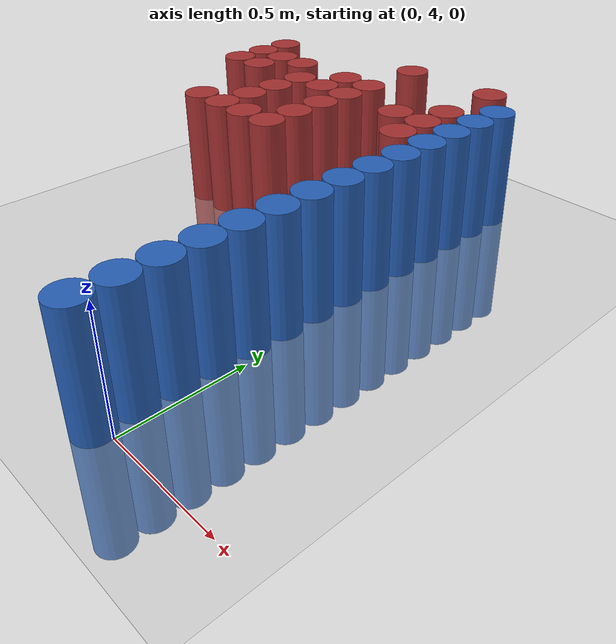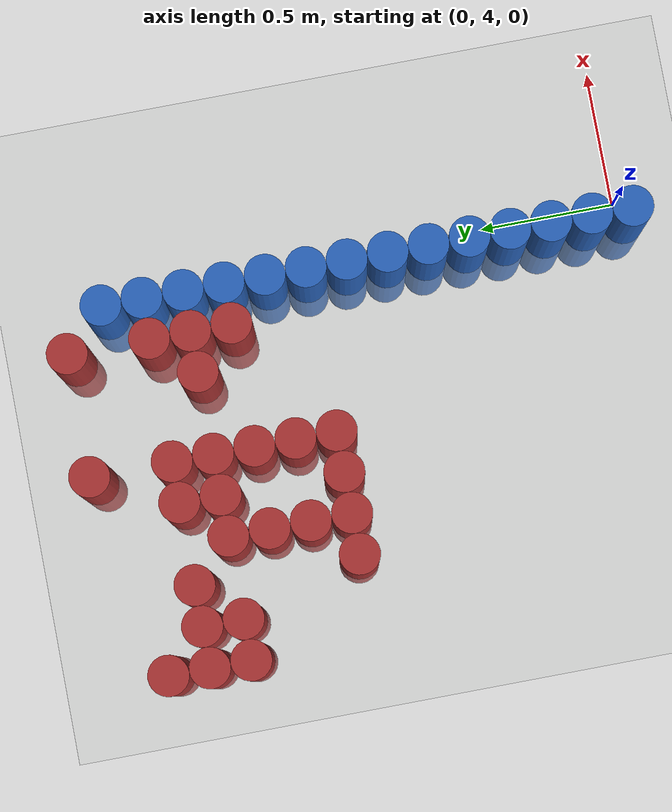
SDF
<sdf version="1.6">
 <world name="default">
  <model name="ground_plane">
   <static>1</static>
   <link name="link">
    <collision name="collision">
     <geometry><plane><normal>0 0 1</normal><size>100 100</size></plane></geometry>
     <surface><friction><ode><mu>100</mu><mu2>50</mu2></ode></friction></surface>
    </collision>
    <visual name="visual">
     <cast_shadows>0</cast_shadows>
     <geometry><plane><normal>0 0 1</normal><size>100 100</size></plane></geometry>
     <material>
      <script><uri>file://media/materials/scripts/gazebo.material</uri><name>Gazebo/Grey</name></script>
     </material>
    </visual>
   </link>
  </model>
  <model name="unit_cylinder_80">
   <static>1</static>
   <pose>-0.075000 3.975000 0.000000 0.000000 0.000000 0.000000</pose>
   <link name="link">
    <inertial>
     <mass>1</mass>
     <inertia><ixx>0.145833</ixx><ixy>0</ixy><ixz>0</ixz><iyy>0.145833</iyy><iyz>0</iyz><izz>0.125</izz></inertia>
    </inertial>
    <collision name="collision">
     <geometry><cylinder><radius>0.075000</radius><length>1</length></cylinder></geometry>
    </collision>
    <visual name="visual">
     <geometry><cylinder><radius>0.075000</radius><length>1</length></cylinder></geometry>
     <material>
      <ambient>0.152000 0.379000 0.720000 1</ambient>
      <diffuse>0.152000 0.379000 0.720000 1</diffuse>
     </material>
     <material>
      <script><name>Gazebo/Grey</name><uri>file://media/materials/scripts/gazebo.material</uri></script>
     </material>
    </visual>
    <sensor name="sensor_contact" type="contact"><contact><collision>collision</collision></contact></sensor>
   </link>
   <plugin filename="gz-sim-touchplugin-system" name="gz::sim::systems::TouchPlugin">
    <target>robot</target>
    <namespace>robot</namespace>
    <time>0.001</time>
    <enabled>true</enabled>
   </plugin>
  </model>
  <model name="unit_cylinder_82">
   <static>1</static>
   <pose>-0.075000 4.125000 0.000000 0.000000 0.000000 0.000000</pose>
   <link name="link">
    <inertial>
     <mass>1</mass>
     <inertia><ixx>0.145833</ixx><ixy>0</ixy><ixz>0</ixz><iyy>0.145833</iyy><iyz>0</iyz><izz>0.125</izz></inertia>
    </inertial>
    <collision name="collision">
     <geometry><cylinder><radius>0.075000</radius><length>1</length></cylinder></geometry>
    </collision>
    <visual name="visual">
     <geometry><cylinder><radius>0.075000</radius><length>1</length></cylinder></geometry>
     <material>
      <ambient>0.152000 0.379000 0.720000 1</ambient>
      <diffuse>0.152000 0.379000 0.720000 1</diffuse>
     </material>
     <material>
      <script><name>Gazebo/Grey</name><uri>file://media/materials/scripts/gazebo.material</uri></script>
     </material>
    </visual>
    <sensor name="sensor_contact" type="contact"><contact><collision>collision</collision></contact></sensor>
   </link>
   <plugin filename="gz-sim-touchplugin-system" name="gz::sim::systems::TouchPlugin">
    <target>robot</target>
    <namespace>robot</namespace>
    <time>0.001</time>
    <enabled>true</enabled>
   </plugin>
  </model>
  <model name="unit_cylinder_84">
   <static>1</static>
   <pose>-0.075000 4.275000 0.000000 0.000000 0.000000 0.000000</pose>
   <link name="link">
    <inertial>
     <mass>1</mass>
     <inertia><ixx>0.145833</ixx><ixy>0</ixy><ixz>0</ixz><iyy>0.145833</iyy><iyz>0</iyz><izz>0.125</izz></inertia>
    </inertial>
    <collision name="collision">
     <geometry><cylinder><radius>0.075000</radius><length>1</length></cylinder></geometry>
    </collision>
    <visual name="visual">
     <geometry><cylinder><radius>0.075000</radius><length>1</length></cylinder></geometry>
     <material>
      <ambient>0.152000 0.379000 0.720000 1</ambient>
      <diffuse>0.152000 0.379000 0.720000 1</diffuse>
     </material>
     <material>
      <script><name>Gazebo/Grey</name><uri>file://media/materials/scripts/gazebo.material</uri></script>
     </material>
    </visual>
    <sensor name="sensor_contact" type="contact"><contact><collision>collision</collision></contact></sensor>
   </link>
   <plugin filename="gz-sim-touchplugin-system" name="gz::sim::systems::TouchPlugin">
    <target>robot</target>
    <namespace>robot</namespace>
    <time>0.001</time>
    <enabled>true</enabled>
   </plugin>
  </model>
  <model name="unit_cylinder_86">
   <static>1</static>
   <pose>-0.075000 4.425000 0.000000 0.000000 0.000000 0.000000</pose>
   <link name="link">
    <inertial>
     <mass>1</mass>
     <inertia><ixx>0.145833</ixx><ixy>0</ixy><ixz>0</ixz><iyy>0.145833</iyy><iyz>0</iyz><izz>0.125</izz></inertia>
    </inertial>
    <collision name="collision">
     <geometry><cylinder><radius>0.075000</radius><length>1</length></cylinder></geometry>
    </collision>
    <visual name="visual">
     <geometry><cylinder><radius>0.075000</radius><length>1</length></cylinder></geometry>
     <material>
      <ambient>0.152000 0.379000 0.720000 1</ambient>
      <diffuse>0.152000 0.379000 0.720000 1</diffuse>
     </material>
     <material>
      <script><name>Gazebo/Grey</name><uri>file://media/materials/scripts/gazebo.material</uri></script>
     </material>
    </visual>
    <sensor name="sensor_contact" type="contact"><contact><collision>collision</collision></contact></sensor>
   </link>
   <plugin filename="gz-sim-touchplugin-system" name="gz::sim::systems::TouchPlugin">
    <target>robot</target>
    <namespace>robot</namespace>
    <time>0.001</time>
    <enabled>true</enabled>
   </plugin>
  </model>
  <model name="unit_cylinder_88">
   <static>1</static>
   <pose>-0.075000 4.575000 0.000000 0.000000 0.000000 0.000000</pose>
   <link name="link">
    <inertial>
     <mass>1</mass>
     <inertia><ixx>0.145833</ixx><ixy>0</ixy><ixz>0</ixz><iyy>0.145833</iyy><iyz>0</iyz><izz>0.125</izz></inertia>
    </inertial>
    <collision name="collision">
     <geometry><cylinder><radius>0.075000</radius><length>1</length></cylinder></geometry>
    </collision>
    <visual name="visual">
     <geometry><cylinder><radius>0.075000</radius><length>1</length></cylinder></geometry>
     <material>
      <ambient>0.152000 0.379000 0.720000 1</ambient>
      <diffuse>0.152000 0.379000 0.720000 1</diffuse>
     </material>
     <material>
      <script><name>Gazebo/Grey</name><uri>file://media/materials/scripts/gazebo.material</uri></script>
     </material>
    </visual>
    <sensor name="sensor_contact" type="contact"><contact><collision>collision</collision></contact></sensor>
   </link>
   <plugin filename="gz-sim-touchplugin-system" name="gz::sim::systems::TouchPlugin">
    <target>robot</target>
    <namespace>robot</namespace>
    <time>0.001</time>
    <enabled>true</enabled>
   </plugin>
  </model>
  <model name="unit_cylinder_90">
   <static>1</static>
   <pose>-0.075000 4.725000 0.000000 0.000000 0.000000 0.000000</pose>
   <link name="link">
    <inertial>
     <mass>1</mass>
     <inertia><ixx>0.145833</ixx><ixy>0</ixy><ixz>0</ixz><iyy>0.145833</iyy><iyz>0</iyz><izz>0.125</izz></inertia>
    </inertial>
    <collision name="collision">
     <geometry><cylinder><radius>0.075000</radius><length>1</length></cylinder></geometry>
    </collision>
    <visual name="visual">
     <geometry><cylinder><radius>0.075000</radius><length>1</length></cylinder></geometry>
     <material>
      <ambient>0.152000 0.379000 0.720000 1</ambient>
      <diffuse>0.152000 0.379000 0.720000 1</diffuse>
     </material>
     <material>
      <script><name>Gazebo/Grey</name><uri>file://media/materials/scripts/gazebo.material</uri></script>
     </material>
    </visual>
    <sensor name="sensor_contact" type="contact"><contact><collision>collision</collision></contact></sensor>
   </link>
   <plugin filename="gz-sim-touchplugin-system" name="gz::sim::systems::TouchPlugin">
    <target>robot</target>
    <namespace>robot</namespace>
    <time>0.001</time>
    <enabled>true</enabled>
   </plugin>
  </model>
  <model name="unit_cylinder_92">
   <static>1</static>
   <pose>-0.075000 4.875000 0.000000 0.000000 0.000000 0.000000</pose>
   <link name="link">
    <inertial>
     <mass>1</mass>
     <inertia><ixx>0.145833</ixx><ixy>0</ixy><ixz>0</ixz><iyy>0.145833</iyy><iyz>0</iyz><izz>0.125</izz></inertia>
    </inertial>
    <collision name="collision">
     <geometry><cylinder><radius>0.075000</radius><length>1</length></cylinder></geometry>
    </collision>
    <visual name="visual">
     <geometry><cylinder><radius>0.075000</radius><length>1</length></cylinder></geometry>
     <material>
      <ambient>0.152000 0.379000 0.720000 1</ambient>
      <diffuse>0.152000 0.379000 0.720000 1</diffuse>
     </material>
     <material>
      <script><name>Gazebo/Grey</name><uri>file://media/materials/scripts/gazebo.material</uri></script>
     </material>
    </visual>
    <sensor name="sensor_contact" type="contact"><contact><collision>collision</collision></contact></sensor>
   </link>
   <plugin filename="gz-sim-touchplugin-system" name="gz::sim::systems::TouchPlugin">
    <target>robot</target>
    <namespace>robot</namespace>
    <time>0.001</time>
    <enabled>true</enabled>
   </plugin>
  </model>
  <model name="unit_cylinder_94">
   <static>1</static>
   <pose>-0.075000 5.025000 0.000000 0.000000 0.000000 0.000000</pose>
   <link name="link">
    <inertial>
     <mass>1</mass>
     <inertia><ixx>0.145833</ixx><ixy>0</ixy><ixz>0</ixz><iyy>0.145833</iyy><iyz>0</iyz><izz>0.125</izz></inertia>
    </inertial>
    <collision name="collision">
     <geometry><cylinder><radius>0.075000</radius><length>1</length></cylinder></geometry>
    </collision>
    <visual name="visual">
     <geometry><cylinder><radius>0.075000</radius><length>1</length></cylinder></geometry>
     <material>
      <ambient>0.152000 0.379000 0.720000 1</ambient>
      <diffuse>0.152000 0.379000 0.720000 1</diffuse>
     </material>
     <material>
      <script><name>Gazebo/Grey</name><uri>file://media/materials/scripts/gazebo.material</uri></script>
     </material>
    </visual>
    <sensor name="sensor_contact" type="contact"><contact><collision>collision</collision></contact></sensor>
   </link>
   <plugin filename="gz-sim-touchplugin-system" name="gz::sim::systems::TouchPlugin">
    <target>robot</target>
    <namespace>robot</namespace>
    <time>0.001</time>
    <enabled>true</enabled>
   </plugin>
  </model>
  <model name="unit_cylinder_211">
   <static>1</static>
   <pose>-1.425000 5.625000 0.000000 0.000000 0.000000 0.000000</pose>
   <link name="link">
    <inertial>
     <mass>1</mass>
     <inertia><ixx>0.145833</ixx><ixy>0</ixy><ixz>0</ixz><iyy>0.145833</iyy><iyz>0</iyz><izz>0.125</izz></inertia>
    </inertial>
    <collision name="collision">
     <geometry><cylinder><radius>0.075000</radius><length>1</length></cylinder></geometry>
    </collision>
    <visual name="visual">
     <geometry><cylinder><radius>0.075000</radius><length>1</length></cylinder></geometry>
     <material>
      <ambient>0.648000 0.192000 0.192000 1</ambient>
      <diffuse>0.648000 0.192000 0.192000 1</diffuse>
     </material>
     <material>
      <script><name>Gazebo/Grey</name><uri>file://media/materials/scripts/gazebo.material</uri></script>
     </material>
    </visual>
    <sensor name="sensor_contact" type="contact"><contact><collision>collision</collision></contact></sensor>
   </link>
   <plugin filename="gz-sim-touchplugin-system" name="gz::sim::systems::TouchPlugin">
    <target>robot</target>
    <namespace>robot</namespace>
    <time>0.001</time>
    <enabled>true</enabled>
   </plugin>
  </model>
  <model name="unit_cylinder_212">
   <static>1</static>
   <pose>-1.425000 5.775000 0.000000 0.000000 0.000000 0.000000</pose>
   <link name="link">
    <inertial>
     <mass>1</mass>
     <inertia><ixx>0.145833</ixx><ixy>0</ixy><ixz>0</ixz><iyy>0.145833</iyy><iyz>0</iyz><izz>0.125</izz></inertia>
    </inertial>
    <collision name="collision">
     <geometry><cylinder><radius>0.075000</radius><length>1</length></cylinder></geometry>
    </collision>
    <visual name="visual">
     <geometry><cylinder><radius>0.075000</radius><length>1</length></cylinder></geometry>
     <material>
      <ambient>0.648000 0.192000 0.192000 1</ambient>
      <diffuse>0.648000 0.192000 0.192000 1</diffuse>
     </material>
     <material>
      <script><name>Gazebo/Grey</name><uri>file://media/materials/scripts/gazebo.material</uri></script>
     </material>
    </visual>
    <sensor name="sensor_contact" type="contact"><contact><collision>collision</collision></contact></sensor>
   </link>
   <plugin filename="gz-sim-touchplugin-system" name="gz::sim::systems::TouchPlugin">
    <target>robot</target>
    <namespace>robot</namespace>
    <time>0.001</time>
    <enabled>true</enabled>
   </plugin>
  </model>
  <model name="unit_cylinder_213">
   <static>1</static>
   <pose>-1.425000 5.925000 0.000000 0.000000 0.000000 0.000000</pose>
   <link name="link">
    <inertial>
     <mass>1</mass>
     <inertia><ixx>0.145833</ixx><ixy>0</ixy><ixz>0</ixz><iyy>0.145833</iyy><iyz>0</iyz><izz>0.125</izz></inertia>
    </inertial>
    <collision name="collision">
     <geometry><cylinder><radius>0.075000</radius><length>1</length></cylinder></geometry>
    </collision>
    <visual name="visual">
     <geometry><cylinder><radius>0.075000</radius><length>1</length></cylinder></geometry>
     <material>
      <ambient>0.648000 0.192000 0.192000 1</ambient>
      <diffuse>0.648000 0.192000 0.192000 1</diffuse>
     </material>
     <material>
      <script><name>Gazebo/Grey</name><uri>file://media/materials/scripts/gazebo.material</uri></script>
     </material>
    </visual>
    <sensor name="sensor_contact" type="contact"><contact><collision>collision</collision></contact></sensor>
   </link>
   <plugin filename="gz-sim-touchplugin-system" name="gz::sim::systems::TouchPlugin">
    <target>robot</target>
    <namespace>robot</namespace>
    <time>0.001</time>
    <enabled>true</enabled>
   </plugin>
  </model>
  <model name="unit_cylinder_216">
   <static>1</static>
   <pose>-1.275000 5.625000 0.000000 0.000000 0.000000 0.000000</pose>
   <link name="link">
    <inertial>
     <mass>1</mass>
     <inertia><ixx>0.145833</ixx><ixy>0</ixy><ixz>0</ixz><iyy>0.145833</iyy><iyz>0</iyz><izz>0.125</izz></inertia>
    </inertial>
    <collision name="collision">
     <geometry><cylinder><radius>0.075000</radius><length>1</length></cylinder></geometry>
    </collision>
    <visual name="visual">
     <geometry><cylinder><radius>0.075000</radius><length>1</length></cylinder></geometry>
     <material>
      <ambient>0.648000 0.192000 0.192000 1</ambient>
      <diffuse>0.648000 0.192000 0.192000 1</diffuse>
     </material>
     <material>
      <script><name>Gazebo/Grey</name><uri>file://media/materials/scripts/gazebo.material</uri></script>
     </material>
    </visual>
    <sensor name="sensor_contact" type="contact"><contact><collision>collision</collision></contact></sensor>
   </link>
   <plugin filename="gz-sim-touchplugin-system" name="gz::sim::systems::TouchPlugin">
    <target>robot</target>
    <namespace>robot</namespace>
    <time>0.001</time>
    <enabled>true</enabled>
   </plugin>
  </model>
  <model name="unit_cylinder_217">
   <static>1</static>
   <pose>-1.275000 5.775000 0.000000 0.000000 0.000000 0.000000</pose>
   <link name="link">
    <inertial>
     <mass>1</mass>
     <inertia><ixx>0.145833</ixx><ixy>0</ixy><ixz>0</ixz><iyy>0.145833</iyy><iyz>0</iyz><izz>0.125</izz></inertia>
    </inertial>
    <collision name="collision">
     <geometry><cylinder><radius>0.075000</radius><length>1</length></cylinder></geometry>
    </collision>
    <visual name="visual">
     <geometry><cylinder><radius>0.075000</radius><length>1</length></cylinder></geometry>
     <material>
      <ambient>0.648000 0.192000 0.192000 1</ambient>
      <diffuse>0.648000 0.192000 0.192000 1</diffuse>
     </material>
     <material>
      <script><name>Gazebo/Grey</name><uri>file://media/materials/scripts/gazebo.material</uri></script>
     </material>
    </visual>
    <sensor name="sensor_contact" type="contact"><contact><collision>collision</collision></contact></sensor>
   </link>
   <plugin filename="gz-sim-touchplugin-system" name="gz::sim::systems::TouchPlugin">
    <target>robot</target>
    <namespace>robot</namespace>
    <time>0.001</time>
    <enabled>true</enabled>
   </plugin>
  </model>
  <model name="unit_cylinder_218">
   <static>1</static>
   <pose>-1.125000 5.175000 0.000000 0.000000 0.000000 0.000000</pose>
   <link name="link">
    <inertial>
     <mass>1</mass>
     <inertia><ixx>0.145833</ixx><ixy>0</ixy><ixz>0</ixz><iyy>0.145833</iyy><iyz>0</iyz><izz>0.125</izz></inertia>
    </inertial>
    <collision name="collision">
     <geometry><cylinder><radius>0.075000</radius><length>1</length></cylinder></geometry>
    </collision>
    <visual name="visual">
     <geometry><cylinder><radius>0.075000</radius><length>1</length></cylinder></geometry>
     <material>
      <ambient>0.648000 0.192000 0.192000 1</ambient>
      <diffuse>0.648000 0.192000 0.192000 1</diffuse>
     </material>
     <material>
      <script><name>Gazebo/Grey</name><uri>file://media/materials/scripts/gazebo.material</uri></script>
     </material>
    </visual>
    <sensor name="sensor_contact" type="contact"><contact><collision>collision</collision></contact></sensor>
   </link>
   <plugin filename="gz-sim-touchplugin-system" name="gz::sim::systems::TouchPlugin">
    <target>robot</target>
    <namespace>robot</namespace>
    <time>0.001</time>
    <enabled>true</enabled>
   </plugin>
  </model>
  <model name="unit_cylinder_219">
   <static>1</static>
   <pose>-1.125000 5.775000 0.000000 0.000000 0.000000 0.000000</pose>
   <link name="link">
    <inertial>
     <mass>1</mass>
     <inertia><ixx>0.145833</ixx><ixy>0</ixy><ixz>0</ixz><iyy>0.145833</iyy><iyz>0</iyz><izz>0.125</izz></inertia>
    </inertial>
    <collision name="collision">
     <geometry><cylinder><radius>0.075000</radius><length>1</length></cylinder></geometry>
    </collision>
    <visual name="visual">
     <geometry><cylinder><radius>0.075000</radius><length>1</length></cylinder></geometry>
     <material>
      <ambient>0.648000 0.192000 0.192000 1</ambient>
      <diffuse>0.648000 0.192000 0.192000 1</diffuse>
     </material>
     <material>
      <script><name>Gazebo/Grey</name><uri>file://media/materials/scripts/gazebo.material</uri></script>
     </material>
    </visual>
    <sensor name="sensor_contact" type="contact"><contact><collision>collision</collision></contact></sensor>
   </link>
   <plugin filename="gz-sim-touchplugin-system" name="gz::sim::systems::TouchPlugin">
    <target>robot</target>
    <namespace>robot</namespace>
    <time>0.001</time>
    <enabled>true</enabled>
   </plugin>
  </model>
  <model name="unit_cylinder_225">
   <static>1</static>
   <pose>-0.975000 5.175000 0.000000 0.000000 0.000000 0.000000</pose>
   <link name="link">
    <inertial>
     <mass>1</mass>
     <inertia><ixx>0.145833</ixx><ixy>0</ixy><ixz>0</ixz><iyy>0.145833</iyy><iyz>0</iyz><izz>0.125</izz></inertia>
    </inertial>
    <collision name="collision">
     <geometry><cylinder><radius>0.075000</radius><length>1</length></cylinder></geometry>
    </collision>
    <visual name="visual">
     <geometry><cylinder><radius>0.075000</radius><length>1</length></cylinder></geometry>
     <material>
      <ambient>0.648000 0.192000 0.192000 1</ambient>
      <diffuse>0.648000 0.192000 0.192000 1</diffuse>
     </material>
     <material>
      <script><name>Gazebo/Grey</name><uri>file://media/materials/scripts/gazebo.material</uri></script>
     </material>
    </visual>
    <sensor name="sensor_contact" type="contact"><contact><collision>collision</collision></contact></sensor>
   </link>
   <plugin filename="gz-sim-touchplugin-system" name="gz::sim::systems::TouchPlugin">
    <target>robot</target>
    <namespace>robot</namespace>
    <time>0.001</time>
    <enabled>true</enabled>
   </plugin>
  </model>
  <model name="unit_cylinder_226">
   <static>1</static>
   <pose>-0.975000 5.325000 0.000000 0.000000 0.000000 0.000000</pose>
   <link name="link">
    <inertial>
     <mass>1</mass>
     <inertia><ixx>0.145833</ixx><ixy>0</ixy><ixz>0</ixz><iyy>0.145833</iyy><iyz>0</iyz><izz>0.125</izz></inertia>
    </inertial>
    <collision name="collision">
     <geometry><cylinder><radius>0.075000</radius><length>1</length></cylinder></geometry>
    </collision>
    <visual name="visual">
     <geometry><cylinder><radius>0.075000</radius><length>1</length></cylinder></geometry>
     <material>
      <ambient>0.648000 0.192000 0.192000 1</ambient>
      <diffuse>0.648000 0.192000 0.192000 1</diffuse>
     </material>
     <material>
      <script><name>Gazebo/Grey</name><uri>file://media/materials/scripts/gazebo.material</uri></script>
     </material>
    </visual>
    <sensor name="sensor_contact" type="contact"><contact><collision>collision</collision></contact></sensor>
   </link>
   <plugin filename="gz-sim-touchplugin-system" name="gz::sim::systems::TouchPlugin">
    <target>robot</target>
    <namespace>robot</namespace>
    <time>0.001</time>
    <enabled>true</enabled>
   </plugin>
  </model>
  <model name="unit_cylinder_227">
   <static>1</static>
   <pose>-0.975000 5.475000 0.000000 0.000000 0.000000 0.000000</pose>
   <link name="link">
    <inertial>
     <mass>1</mass>
     <inertia><ixx>0.145833</ixx><ixy>0</ixy><ixz>0</ixz><iyy>0.145833</iyy><iyz>0</iyz><izz>0.125</izz></inertia>
    </inertial>
    <collision name="collision">
     <geometry><cylinder><radius>0.075000</radius><length>1</length></cylinder></geometry>
    </collision>
    <visual name="visual">
     <geometry><cylinder><radius>0.075000</radius><length>1</length></cylinder></geometry>
     <material>
      <ambient>0.648000 0.192000 0.192000 1</ambient>
      <diffuse>0.648000 0.192000 0.192000 1</diffuse>
     </material>
     <material>
      <script><name>Gazebo/Grey</name><uri>file://media/materials/scripts/gazebo.material</uri></script>
     </material>
    </visual>
    <sensor name="sensor_contact" type="contact"><contact><collision>collision</collision></contact></sensor>
   </link>
   <plugin filename="gz-sim-touchplugin-system" name="gz::sim::systems::TouchPlugin">
    <target>robot</target>
    <namespace>robot</namespace>
    <time>0.001</time>
    <enabled>true</enabled>
   </plugin>
  </model>
  <model name="unit_cylinder_228">
   <static>1</static>
   <pose>-0.975000 5.625000 0.000000 0.000000 0.000000 0.000000</pose>
   <link name="link">
    <inertial>
     <mass>1</mass>
     <inertia><ixx>0.145833</ixx><ixy>0</ixy><ixz>0</ixz><iyy>0.145833</iyy><iyz>0</iyz><izz>0.125</izz></inertia>
    </inertial>
    <collision name="collision">
     <geometry><cylinder><radius>0.075000</radius><length>1</length></cylinder></geometry>
    </collision>
    <visual name="visual">
     <geometry><cylinder><radius>0.075000</radius><length>1</length></cylinder></geometry>
     <material>
      <ambient>0.648000 0.192000 0.192000 1</ambient>
      <diffuse>0.648000 0.192000 0.192000 1</diffuse>
     </material>
     <material>
      <script><name>Gazebo/Grey</name><uri>file://media/materials/scripts/gazebo.material</uri></script>
     </material>
    </visual>
    <sensor name="sensor_contact" type="contact"><contact><collision>collision</collision></contact></sensor>
   </link>
   <plugin filename="gz-sim-touchplugin-system" name="gz::sim::systems::TouchPlugin">
    <target>robot</target>
    <namespace>robot</namespace>
    <time>0.001</time>
    <enabled>true</enabled>
   </plugin>
  </model>
  <model name="unit_cylinder_234">
   <static>1</static>
   <pose>-0.825000 5.175000 0.000000 0.000000 0.000000 0.000000</pose>
   <link name="link">
    <inertial>
     <mass>1</mass>
     <inertia><ixx>0.145833</ixx><ixy>0</ixy><ixz>0</ixz><iyy>0.145833</iyy><iyz>0</iyz><izz>0.125</izz></inertia>
    </inertial>
    <collision name="collision">
     <geometry><cylinder><radius>0.075000</radius><length>1</length></cylinder></geometry>
    </collision>
    <visual name="visual">
     <geometry><cylinder><radius>0.075000</radius><length>1</length></cylinder></geometry>
     <material>
      <ambient>0.648000 0.192000 0.192000 1</ambient>
      <diffuse>0.648000 0.192000 0.192000 1</diffuse>
     </material>
     <material>
      <script><name>Gazebo/Grey</name><uri>file://media/materials/scripts/gazebo.material</uri></script>
     </material>
    </visual>
    <sensor name="sensor_contact" type="contact"><contact><collision>collision</collision></contact></sensor>
   </link>
   <plugin filename="gz-sim-touchplugin-system" name="gz::sim::systems::TouchPlugin">
    <target>robot</target>
    <namespace>robot</namespace>
    <time>0.001</time>
    <enabled>true</enabled>
   </plugin>
  </model>
  <model name="unit_cylinder_235">
   <static>1</static>
   <pose>-0.825000 5.625000 0.000000 0.000000 0.000000 0.000000</pose>
   <link name="link">
    <inertial>
     <mass>1</mass>
     <inertia><ixx>0.145833</ixx><ixy>0</ixy><ixz>0</ixz><iyy>0.145833</iyy><iyz>0</iyz><izz>0.125</izz></inertia>
    </inertial>
    <collision name="collision">
     <geometry><cylinder><radius>0.075000</radius><length>1</length></cylinder></geometry>
    </collision>
    <visual name="visual">
     <geometry><cylinder><radius>0.075000</radius><length>1</length></cylinder></geometry>
     <material>
      <ambient>0.648000 0.192000 0.192000 1</ambient>
      <diffuse>0.648000 0.192000 0.192000 1</diffuse>
     </material>
     <material>
      <script><name>Gazebo/Grey</name><uri>file://media/materials/scripts/gazebo.material</uri></script>
     </material>
    </visual>
    <sensor name="sensor_contact" type="contact"><contact><collision>collision</collision></contact></sensor>
   </link>
   <plugin filename="gz-sim-touchplugin-system" name="gz::sim::systems::TouchPlugin">
    <target>robot</target>
    <namespace>robot</namespace>
    <time>0.001</time>
    <enabled>true</enabled>
   </plugin>
  </model>
  <model name="unit_cylinder_236">
   <static>1</static>
   <pose>-0.825000 5.775000 0.000000 0.000000 0.000000 0.000000</pose>
   <link name="link">
    <inertial>
     <mass>1</mass>
     <inertia><ixx>0.145833</ixx><ixy>0</ixy><ixz>0</ixz><iyy>0.145833</iyy><iyz>0</iyz><izz>0.125</izz></inertia>
    </inertial>
    <collision name="collision">
     <geometry><cylinder><radius>0.075000</radius><length>1</length></cylinder></geometry>
    </collision>
    <visual name="visual">
     <geometry><cylinder><radius>0.075000</radius><length>1</length></cylinder></geometry>
     <material>
      <ambient>0.648000 0.192000 0.192000 1</ambient>
      <diffuse>0.648000 0.192000 0.192000 1</diffuse>
     </material>
     <material>
      <script><name>Gazebo/Grey</name><uri>file://media/materials/scripts/gazebo.material</uri></script>
     </material>
    </visual>
    <sensor name="sensor_contact" type="contact"><contact><collision>collision</collision></contact></sensor>
   </link>
   <plugin filename="gz-sim-touchplugin-system" name="gz::sim::systems::TouchPlugin">
    <target>robot</target>
    <namespace>robot</namespace>
    <time>0.001</time>
    <enabled>true</enabled>
   </plugin>
  </model>
  <model name="unit_cylinder_241">
   <static>1</static>
   <pose>-0.675000 5.175000 0.000000 0.000000 0.000000 0.000000</pose>
   <link name="link">
    <inertial>
     <mass>1</mass>
     <inertia><ixx>0.145833</ixx><ixy>0</ixy><ixz>0</ixz><iyy>0.145833</iyy><iyz>0</iyz><izz>0.125</izz></inertia>
    </inertial>
    <collision name="collision">
     <geometry><cylinder><radius>0.075000</radius><length>1</length></cylinder></geometry>
    </collision>
    <visual name="visual">
     <geometry><cylinder><radius>0.075000</radius><length>1</length></cylinder></geometry>
     <material>
      <ambient>0.648000 0.192000 0.192000 1</ambient>
      <diffuse>0.648000 0.192000 0.192000 1</diffuse>
     </material>
     <material>
      <script><name>Gazebo/Grey</name><uri>file://media/materials/scripts/gazebo.material</uri></script>
     </material>
    </visual>
    <sensor name="sensor_contact" type="contact"><contact><collision>collision</collision></contact></sensor>
   </link>
   <plugin filename="gz-sim-touchplugin-system" name="gz::sim::systems::TouchPlugin">
    <target>robot</target>
    <namespace>robot</namespace>
    <time>0.001</time>
    <enabled>true</enabled>
   </plugin>
  </model>
  <model name="unit_cylinder_242">
   <static>1</static>
   <pose>-0.675000 5.325000 0.000000 0.000000 0.000000 0.000000</pose>
   <link name="link">
    <inertial>
     <mass>1</mass>
     <inertia><ixx>0.145833</ixx><ixy>0</ixy><ixz>0</ixz><iyy>0.145833</iyy><iyz>0</iyz><izz>0.125</izz></inertia>
    </inertial>
    <collision name="collision">
     <geometry><cylinder><radius>0.075000</radius><length>1</length></cylinder></geometry>
    </collision>
    <visual name="visual">
     <geometry><cylinder><radius>0.075000</radius><length>1</length></cylinder></geometry>
     <material>
      <ambient>0.648000 0.192000 0.192000 1</ambient>
      <diffuse>0.648000 0.192000 0.192000 1</diffuse>
     </material>
     <material>
      <script><name>Gazebo/Grey</name><uri>file://media/materials/scripts/gazebo.material</uri></script>
     </material>
    </visual>
    <sensor name="sensor_contact" type="contact"><contact><collision>collision</collision></contact></sensor>
   </link>
   <plugin filename="gz-sim-touchplugin-system" name="gz::sim::systems::TouchPlugin">
    <target>robot</target>
    <namespace>robot</namespace>
    <time>0.001</time>
    <enabled>true</enabled>
   </plugin>
  </model>
  <model name="unit_cylinder_243">
   <static>1</static>
   <pose>-0.675000 5.475000 0.000000 0.000000 0.000000 0.000000</pose>
   <link name="link">
    <inertial>
     <mass>1</mass>
     <inertia><ixx>0.145833</ixx><ixy>0</ixy><ixz>0</ixz><iyy>0.145833</iyy><iyz>0</iyz><izz>0.125</izz></inertia>
    </inertial>
    <collision name="collision">
     <geometry><cylinder><radius>0.075000</radius><length>1</length></cylinder></geometry>
    </collision>
    <visual name="visual">
     <geometry><cylinder><radius>0.075000</radius><length>1</length></cylinder></geometry>
     <material>
      <ambient>0.648000 0.192000 0.192000 1</ambient>
      <diffuse>0.648000 0.192000 0.192000 1</diffuse>
     </material>
     <material>
      <script><name>Gazebo/Grey</name><uri>file://media/materials/scripts/gazebo.material</uri></script>
     </material>
    </visual>
    <sensor name="sensor_contact" type="contact"><contact><collision>collision</collision></contact></sensor>
   </link>
   <plugin filename="gz-sim-touchplugin-system" name="gz::sim::systems::TouchPlugin">
    <target>robot</target>
    <namespace>robot</namespace>
    <time>0.001</time>
    <enabled>true</enabled>
   </plugin>
  </model>
  <model name="unit_cylinder_244">
   <static>1</static>
   <pose>-0.675000 5.625000 0.000000 0.000000 0.000000 0.000000</pose>
   <link name="link">
    <inertial>
     <mass>1</mass>
     <inertia><ixx>0.145833</ixx><ixy>0</ixy><ixz>0</ixz><iyy>0.145833</iyy><iyz>0</iyz><izz>0.125</izz></inertia>
    </inertial>
    <collision name="collision">
     <geometry><cylinder><radius>0.075000</radius><length>1</length></cylinder></geometry>
    </collision>
    <visual name="visual">
     <geometry><cylinder><radius>0.075000</radius><length>1</length></cylinder></geometry>
     <material>
      <ambient>0.648000 0.192000 0.192000 1</ambient>
      <diffuse>0.648000 0.192000 0.192000 1</diffuse>
     </material>
     <material>
      <script><name>Gazebo/Grey</name><uri>file://media/materials/scripts/gazebo.material</uri></script>
     </material>
    </visual>
    <sensor name="sensor_contact" type="contact"><contact><collision>collision</collision></contact></sensor>
   </link>
   <plugin filename="gz-sim-touchplugin-system" name="gz::sim::systems::TouchPlugin">
    <target>robot</target>
    <namespace>robot</namespace>
    <time>0.001</time>
    <enabled>true</enabled>
   </plugin>
  </model>
  <model name="unit_cylinder_245">
   <static>1</static>
   <pose>-0.675000 5.775000 0.000000 0.000000 0.000000 0.000000</pose>
   <link name="link">
    <inertial>
     <mass>1</mass>
     <inertia><ixx>0.145833</ixx><ixy>0</ixy><ixz>0</ixz><iyy>0.145833</iyy><iyz>0</iyz><izz>0.125</izz></inertia>
    </inertial>
    <collision name="collision">
     <geometry><cylinder><radius>0.075000</radius><length>1</length></cylinder></geometry>
    </collision>
    <visual name="visual">
     <geometry><cylinder><radius>0.075000</radius><length>1</length></cylinder></geometry>
     <material>
      <ambient>0.648000 0.192000 0.192000 1</ambient>
      <diffuse>0.648000 0.192000 0.192000 1</diffuse>
     </material>
     <material>
      <script><name>Gazebo/Grey</name><uri>file://media/materials/scripts/gazebo.material</uri></script>
     </material>
    </visual>
    <sensor name="sensor_contact" type="contact"><contact><collision>collision</collision></contact></sensor>
   </link>
   <plugin filename="gz-sim-touchplugin-system" name="gz::sim::systems::TouchPlugin">
    <target>robot</target>
    <namespace>robot</namespace>
    <time>0.001</time>
    <enabled>true</enabled>
   </plugin>
  </model>
  <model name="unit_cylinder_246">
   <static>1</static>
   <pose>-0.675000 6.075000 0.000000 0.000000 0.000000 0.000000</pose>
   <link name="link">
    <inertial>
     <mass>1</mass>
     <inertia><ixx>0.145833</ixx><ixy>0</ixy><ixz>0</ixz><iyy>0.145833</iyy><iyz>0</iyz><izz>0.125</izz></inertia>
    </inertial>
    <collision name="collision">
     <geometry><cylinder><radius>0.075000</radius><length>1</length></cylinder></geometry>
    </collision>
    <visual name="visual">
     <geometry><cylinder><radius>0.075000</radius><length>1</length></cylinder></geometry>
     <material>
      <ambient>0.648000 0.192000 0.192000 1</ambient>
      <diffuse>0.648000 0.192000 0.192000 1</diffuse>
     </material>
     <material>
      <script><name>Gazebo/Grey</name><uri>file://media/materials/scripts/gazebo.material</uri></script>
     </material>
    </visual>
    <sensor name="sensor_contact" type="contact"><contact><collision>collision</collision></contact></sensor>
   </link>
   <plugin filename="gz-sim-touchplugin-system" name="gz::sim::systems::TouchPlugin">
    <target>robot</target>
    <namespace>robot</namespace>
    <time>0.001</time>
    <enabled>true</enabled>
   </plugin>
  </model>
  <model name="unit_cylinder_258">
   <static>1</static>
   <pose>-0.375000 5.625000 0.000000 0.000000 0.000000 0.000000</pose>
   <link name="link">
    <inertial>
     <mass>1</mass>
     <inertia><ixx>0.145833</ixx><ixy>0</ixy><ixz>0</ixz><iyy>0.145833</iyy><iyz>0</iyz><izz>0.125</izz></inertia>
    </inertial>
    <collision name="collision">
     <geometry><cylinder><radius>0.075000</radius><length>1</length></cylinder></geometry>
    </collision>
    <visual name="visual">
     <geometry><cylinder><radius>0.075000</radius><length>1</length></cylinder></geometry>
     <material>
      <ambient>0.648000 0.192000 0.192000 1</ambient>
      <diffuse>0.648000 0.192000 0.192000 1</diffuse>
     </material>
     <material>
      <script><name>Gazebo/Grey</name><uri>file://media/materials/scripts/gazebo.material</uri></script>
     </material>
    </visual>
    <sensor name="sensor_contact" type="contact"><contact><collision>collision</collision></contact></sensor>
   </link>
   <plugin filename="gz-sim-touchplugin-system" name="gz::sim::systems::TouchPlugin">
    <target>robot</target>
    <namespace>robot</namespace>
    <time>0.001</time>
    <enabled>true</enabled>
   </plugin>
  </model>
  <model name="unit_cylinder_267">
   <static>1</static>
   <pose>-0.225000 5.475000 0.000000 0.000000 0.000000 0.000000</pose>
   <link name="link">
    <inertial>
     <mass>1</mass>
     <inertia><ixx>0.145833</ixx><ixy>0</ixy><ixz>0</ixz><iyy>0.145833</iyy><iyz>0</iyz><izz>0.125</izz></inertia>
    </inertial>
    <collision name="collision">
     <geometry><cylinder><radius>0.075000</radius><length>1</length></cylinder></geometry>
    </collision>
    <visual name="visual">
     <geometry><cylinder><radius>0.075000</radius><length>1</length></cylinder></geometry>
     <material>
      <ambient>0.648000 0.192000 0.192000 1</ambient>
      <diffuse>0.648000 0.192000 0.192000 1</diffuse>
     </material>
     <material>
      <script><name>Gazebo/Grey</name><uri>file://media/materials/scripts/gazebo.material</uri></script>
     </material>
    </visual>
    <sensor name="sensor_contact" type="contact"><contact><collision>collision</collision></contact></sensor>
   </link>
   <plugin filename="gz-sim-touchplugin-system" name="gz::sim::systems::TouchPlugin">
    <target>robot</target>
    <namespace>robot</namespace>
    <time>0.001</time>
    <enabled>true</enabled>
   </plugin>
  </model>
  <model name="unit_cylinder_268">
   <static>1</static>
   <pose>-0.225000 5.625000 0.000000 0.000000 0.000000 0.000000</pose>
   <link name="link">
    <inertial>
     <mass>1</mass>
     <inertia><ixx>0.145833</ixx><ixy>0</ixy><ixz>0</ixz><iyy>0.145833</iyy><iyz>0</iyz><izz>0.125</izz></inertia>
    </inertial>
    <collision name="collision">
     <geometry><cylinder><radius>0.075000</radius><length>1</length></cylinder></geometry>
    </collision>
    <visual name="visual">
     <geometry><cylinder><radius>0.075000</radius><length>1</length></cylinder></geometry>
     <material>
      <ambient>0.648000 0.192000 0.192000 1</ambient>
      <diffuse>0.648000 0.192000 0.192000 1</diffuse>
     </material>
     <material>
      <script><name>Gazebo/Grey</name><uri>file://media/materials/scripts/gazebo.material</uri></script>
     </material>
    </visual>
    <sensor name="sensor_contact" type="contact"><contact><collision>collision</collision></contact></sensor>
   </link>
   <plugin filename="gz-sim-touchplugin-system" name="gz::sim::systems::TouchPlugin">
    <target>robot</target>
    <namespace>robot</namespace>
    <time>0.001</time>
    <enabled>true</enabled>
   </plugin>
  </model>
  <model name="unit_cylinder_269">
   <static>1</static>
   <pose>-0.225000 5.775000 0.000000 0.000000 0.000000 0.000000</pose>
   <link name="link">
    <inertial>
     <mass>1</mass>
     <inertia><ixx>0.145833</ixx><ixy>0</ixy><ixz>0</ixz><iyy>0.145833</iyy><iyz>0</iyz><izz>0.125</izz></inertia>
    </inertial>
    <collision name="collision">
     <geometry><cylinder><radius>0.075000</radius><length>1</length></cylinder></geometry>
    </collision>
    <visual name="visual">
     <geometry><cylinder><radius>0.075000</radius><length>1</length></cylinder></geometry>
     <material>
      <ambient>0.648000 0.192000 0.192000 1</ambient>
      <diffuse>0.648000 0.192000 0.192000 1</diffuse>
     </material>
     <material>
      <script><name>Gazebo/Grey</name><uri>file://media/materials/scripts/gazebo.material</uri></script>
     </material>
    </visual>
    <sensor name="sensor_contact" type="contact"><contact><collision>collision</collision></contact></sensor>
   </link>
   <plugin filename="gz-sim-touchplugin-system" name="gz::sim::systems::TouchPlugin">
    <target>robot</target>
    <namespace>robot</namespace>
    <time>0.001</time>
    <enabled>true</enabled>
   </plugin>
  </model>
  <model name="unit_cylinder_270">
   <static>1</static>
   <pose>-0.225000 6.075000 0.000000 0.000000 0.000000 0.000000</pose>
   <link name="link">
    <inertial>
     <mass>1</mass>
     <inertia><ixx>0.145833</ixx><ixy>0</ixy><ixz>0</ixz><iyy>0.145833</iyy><iyz>0</iyz><izz>0.125</izz></inertia>
    </inertial>
    <collision name="collision">
     <geometry><cylinder><radius>0.075000</radius><length>1</length></cylinder></geometry>
    </collision>
    <visual name="visual">
     <geometry><cylinder><radius>0.075000</radius><length>1</length></cylinder></geometry>
     <material>
      <ambient>0.648000 0.192000 0.192000 1</ambient>
      <diffuse>0.648000 0.192000 0.192000 1</diffuse>
     </material>
     <material>
      <script><name>Gazebo/Grey</name><uri>file://media/materials/scripts/gazebo.material</uri></script>
     </material>
    </visual>
    <sensor name="sensor_contact" type="contact"><contact><collision>collision</collision></contact></sensor>
   </link>
   <plugin filename="gz-sim-touchplugin-system" name="gz::sim::systems::TouchPlugin">
    <target>robot</target>
    <namespace>robot</namespace>
    <time>0.001</time>
    <enabled>true</enabled>
   </plugin>
  </model>
  <model name="unit_cylinder_285">
   <static>1</static>
   <pose>-0.075000 5.175000 0.000000 0.000000 0.000000 0.000000</pose>
   <link name="link">
    <inertial>
     <mass>1</mass>
     <inertia><ixx>0.145833</ixx><ixy>0</ixy><ixz>0</ixz><iyy>0.145833</iyy><iyz>0</iyz><izz>0.125</izz></inertia>
    </inertial>
    <collision name="collision">
     <geometry><cylinder><radius>0.075000</radius><length>1</length></cylinder></geometry>
    </collision>
    <visual name="visual">
     <geometry><cylinder><radius>0.075000</radius><length>1</length></cylinder></geometry>
     <material>
      <ambient>0.152000 0.379000 0.720000 1</ambient>
      <diffuse>0.152000 0.379000 0.720000 1</diffuse>
     </material>
     <material>
      <script><name>Gazebo/Grey</name><uri>file://media/materials/scripts/gazebo.material</uri></script>
     </material>
    </visual>
    <sensor name="sensor_contact" type="contact"><contact><collision>collision</collision></contact></sensor>
   </link>
   <plugin filename="gz-sim-touchplugin-system" name="gz::sim::systems::TouchPlugin">
    <target>robot</target>
    <namespace>robot</namespace>
    <time>0.001</time>
    <enabled>true</enabled>
   </plugin>
  </model>
  <model name="unit_cylinder_286">
   <static>1</static>
   <pose>-0.075000 5.325000 0.000000 0.000000 0.000000 0.000000</pose>
   <link name="link">
    <inertial>
     <mass>1</mass>
     <inertia><ixx>0.145833</ixx><ixy>0</ixy><ixz>0</ixz><iyy>0.145833</iyy><iyz>0</iyz><izz>0.125</izz></inertia>
    </inertial>
    <collision name="collision">
     <geometry><cylinder><radius>0.075000</radius><length>1</length></cylinder></geometry>
    </collision>
    <visual name="visual">
     <geometry><cylinder><radius>0.075000</radius><length>1</length></cylinder></geometry>
     <material>
      <ambient>0.152000 0.379000 0.720000 1</ambient>
      <diffuse>0.152000 0.379000 0.720000 1</diffuse>
     </material>
     <material>
      <script><name>Gazebo/Grey</name><uri>file://media/materials/scripts/gazebo.material</uri></script>
     </material>
    </visual>
    <sensor name="sensor_contact" type="contact"><contact><collision>collision</collision></contact></sensor>
   </link>
   <plugin filename="gz-sim-touchplugin-system" name="gz::sim::systems::TouchPlugin">
    <target>robot</target>
    <namespace>robot</namespace>
    <time>0.001</time>
    <enabled>true</enabled>
   </plugin>
  </model>
  <model name="unit_cylinder_287">
   <static>1</static>
   <pose>-0.075000 5.475000 0.000000 0.000000 0.000000 0.000000</pose>
   <link name="link">
    <inertial>
     <mass>1</mass>
     <inertia><ixx>0.145833</ixx><ixy>0</ixy><ixz>0</ixz><iyy>0.145833</iyy><iyz>0</iyz><izz>0.125</izz></inertia>
    </inertial>
    <collision name="collision">
     <geometry><cylinder><radius>0.075000</radius><length>1</length></cylinder></geometry>
    </collision>
    <visual name="visual">
     <geometry><cylinder><radius>0.075000</radius><length>1</length></cylinder></geometry>
     <material>
      <ambient>0.152000 0.379000 0.720000 1</ambient>
      <diffuse>0.152000 0.379000 0.720000 1</diffuse>
     </material>
     <material>
      <script><name>Gazebo/Grey</name><uri>file://media/materials/scripts/gazebo.material</uri></script>
     </material>
    </visual>
    <sensor name="sensor_contact" type="contact"><contact><collision>collision</collision></contact></sensor>
   </link>
   <plugin filename="gz-sim-touchplugin-system" name="gz::sim::systems::TouchPlugin">
    <target>robot</target>
    <namespace>robot</namespace>
    <time>0.001</time>
    <enabled>true</enabled>
   </plugin>
  </model>
  <model name="unit_cylinder_288">
   <static>1</static>
   <pose>-0.075000 5.625000 0.000000 0.000000 0.000000 0.000000</pose>
   <link name="link">
    <inertial>
     <mass>1</mass>
     <inertia><ixx>0.145833</ixx><ixy>0</ixy><ixz>0</ixz><iyy>0.145833</iyy><iyz>0</iyz><izz>0.125</izz></inertia>
    </inertial>
    <collision name="collision">
     <geometry><cylinder><radius>0.075000</radius><length>1</length></cylinder></geometry>
    </collision>
    <visual name="visual">
     <geometry><cylinder><radius>0.075000</radius><length>1</length></cylinder></geometry>
     <material>
      <ambient>0.152000 0.379000 0.720000 1</ambient>
      <diffuse>0.152000 0.379000 0.720000 1</diffuse>
     </material>
     <material>
      <script><name>Gazebo/Grey</name><uri>file://media/materials/scripts/gazebo.material</uri></script>
     </material>
    </visual>
    <sensor name="sensor_contact" type="contact"><contact><collision>collision</collision></contact></sensor>
   </link>
   <plugin filename="gz-sim-touchplugin-system" name="gz::sim::systems::TouchPlugin">
    <target>robot</target>
    <namespace>robot</namespace>
    <time>0.001</time>
    <enabled>true</enabled>
   </plugin>
  </model>
  <model name="unit_cylinder_289">
   <static>1</static>
   <pose>-0.075000 5.775000 0.000000 0.000000 0.000000 0.000000</pose>
   <link name="link">
    <inertial>
     <mass>1</mass>
     <inertia><ixx>0.145833</ixx><ixy>0</ixy><ixz>0</ixz><iyy>0.145833</iyy><iyz>0</iyz><izz>0.125</izz></inertia>
    </inertial>
    <collision name="collision">
     <geometry><cylinder><radius>0.075000</radius><length>1</length></cylinder></geometry>
    </collision>
    <visual name="visual">
     <geometry><cylinder><radius>0.075000</radius><length>1</length></cylinder></geometry>
     <material>
      <ambient>0.152000 0.379000 0.720000 1</ambient>
      <diffuse>0.152000 0.379000 0.720000 1</diffuse>
     </material>
     <material>
      <script><name>Gazebo/Grey</name><uri>file://media/materials/scripts/gazebo.material</uri></script>
     </material>
    </visual>
    <sensor name="sensor_contact" type="contact"><contact><collision>collision</collision></contact></sensor>
   </link>
   <plugin filename="gz-sim-touchplugin-system" name="gz::sim::systems::TouchPlugin">
    <target>robot</target>
    <namespace>robot</namespace>
    <time>0.001</time>
    <enabled>true</enabled>
   </plugin>
  </model>
  <model name="unit_cylinder_290">
   <static>1</static>
   <pose>-0.075000 5.925000 0.000000 0.000000 0.000000 0.000000</pose>
   <link name="link">
    <inertial>
     <mass>1</mass>
     <inertia><ixx>0.145833</ixx><ixy>0</ixy><ixz>0</ixz><iyy>0.145833</iyy><iyz>0</iyz><izz>0.125</izz></inertia>
    </inertial>
    <collision name="collision">
     <geometry><cylinder><radius>0.075000</radius><length>1</length></cylinder></geometry>
    </collision>
    <visual name="visual">
     <geometry><cylinder><radius>0.075000</radius><length>1</length></cylinder></geometry>
     <material>
      <ambient>0.152000 0.379000 0.720000 1</ambient>
      <diffuse>0.152000 0.379000 0.720000 1</diffuse>
     </material>
     <material>
      <script><name>Gazebo/Grey</name><uri>file://media/materials/scripts/gazebo.material</uri></script>
     </material>
    </visual>
    <sensor name="sensor_contact" type="contact"><contact><collision>collision</collision></contact></sensor>
   </link>
   <plugin filename="gz-sim-touchplugin-system" name="gz::sim::systems::TouchPlugin">
    <target>robot</target>
    <namespace>robot</namespace>
    <time>0.001</time>
    <enabled>true</enabled>
   </plugin>
  </model>
 </world>
</sdf>
